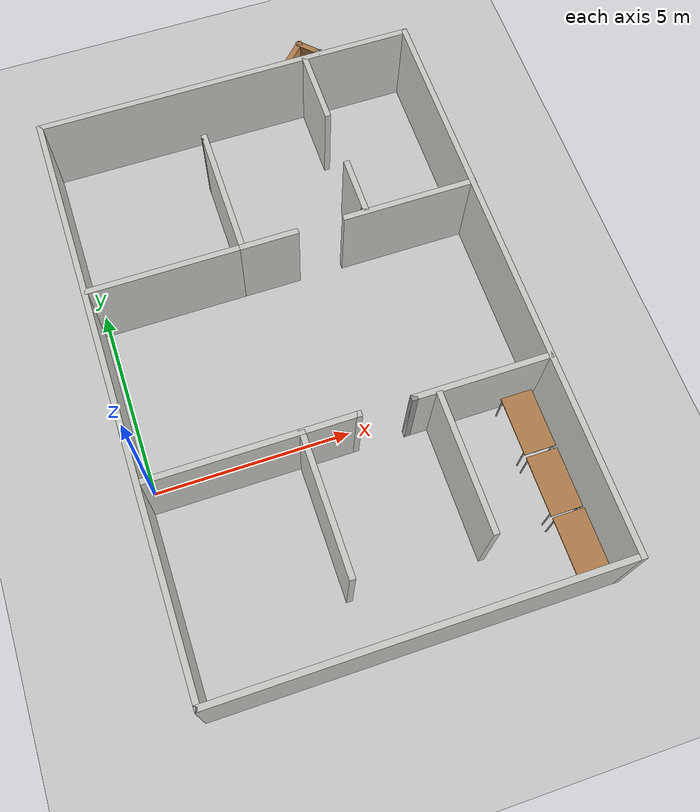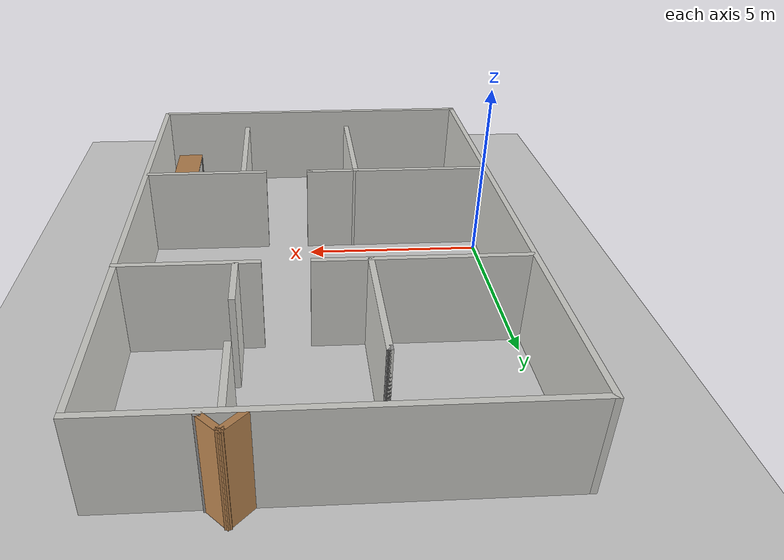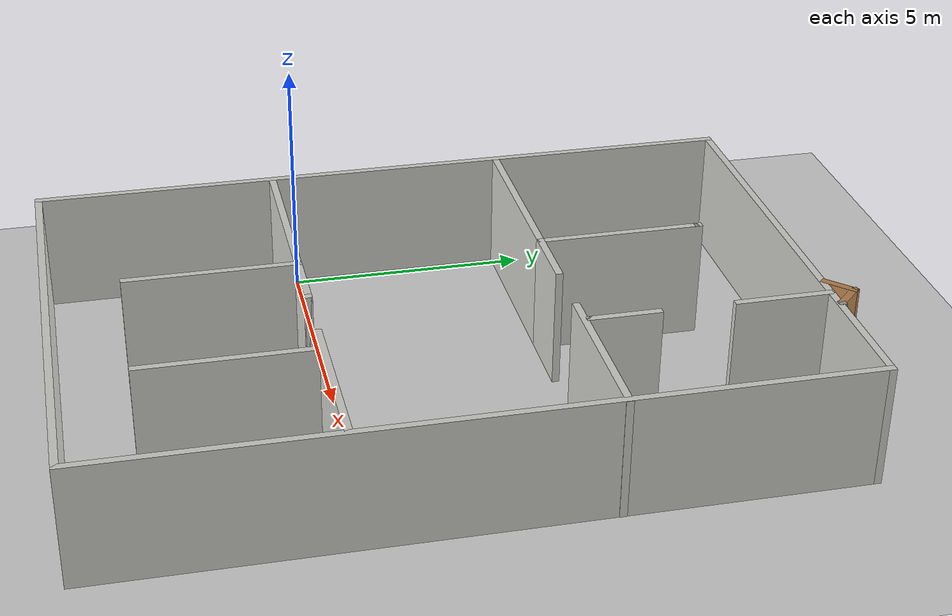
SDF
<sdf version="1.7">
 <world name="default">
  <model name="ground_plane">
   <static>1</static>
   <link name="link">
    <collision name="collision">
     <geometry><plane><normal>0 0 1</normal><size>100 100</size></plane></geometry>
     <surface><friction><ode><mu>100</mu><mu2>50</mu2></ode></friction></surface>
    </collision>
    <visual name="visual">
     <cast_shadows>0</cast_shadows>
     <geometry><plane><normal>0 0 1</normal><size>100 100</size></plane></geometry>
     <material>
      <script><uri>file://media/materials/scripts/gazebo.material</uri><name>Gazebo/Grey</name></script>
     </material>
    </visual>
   </link>
  </model>
  <model name="School">
   <link name="Wall_17">
    <pose>0.254991 -4.96898 0 0 -0 0</pose>
    <visual name="Wall_17_Visual">
     <pose>0 0 1.25 0 -0 0</pose>
     <geometry><box><size>15 0.15 2.5</size></box></geometry>
     <material>
      <script><uri>file://media/materials/scripts/gazebo.material</uri><name>Gazebo/CeilingTiled</name></script>
      <ambient>1 1 1 1</ambient>
      <shader type="pixel"/>
     </material>
     <meta><layer>0</layer></meta>
    </visual>
    <collision name="Wall_17_Collision">
     <pose>0 0 1.25 0 -0 0</pose>
     <geometry><box><size>15 0.15 2.5</size></box></geometry>
     <surface>
      <friction>
       <ode><mu>1</mu><mu2>1</mu2><fdir1>0 0 0</fdir1><slip1>0</slip1><slip2>0</slip2></ode>
       <torsional>
        <coefficient>1</coefficient>
        <patch_radius>0</patch_radius>
        <surface_radius>0</surface_radius>
        <use_patch_radius>1</use_patch_radius>
        <ode><slip>0</slip></ode>
       </torsional>
      </friction>
      <bounce><restitution_coefficient>0</restitution_coefficient><threshold>1e+06</threshold></bounce>
      <contact>
       <collide_without_contact>0</collide_without_contact>
       <collide_without_contact_bitmask>1</collide_without_contact_bitmask>
       <collide_bitmask>1</collide_bitmask>
       <ode>
        <soft_cfm>0</soft_cfm>
        <soft_erp>0.2</soft_erp>
        <kp>1e+13</kp>
        <kd>1</kd>
        <max_vel>0.01</max_vel>
        <min_depth>0</min_depth>
       </ode>
       <bullet>
        <split_impulse>1</split_impulse>
        <split_impulse_penetration_threshold>-0.01</split_impulse_penetration_threshold>
        <soft_cfm>0</soft_cfm>
        <soft_erp>0.2</soft_erp>
        <kp>1e+13</kp>
        <kd>1</kd>
       </bullet>
      </contact>
     </surface>
    </collision>
   </link>
   <link name="Wall_19">
    <pose>7.67999 -0.04398 0 0 -0 1.5708</pose>
    <visual name="Wall_19_Visual">
     <pose>0 0 1.25 0 -0 0</pose>
     <geometry><box><size>10 0.15 2.5</size></box></geometry>
     <material>
      <script><uri>file://media/materials/scripts/gazebo.material</uri><name>Gazebo/CeilingTiled</name></script>
      <ambient>1 1 1 1</ambient>
      <shader type="pixel"/>
     </material>
     <meta><layer>0</layer></meta>
    </visual>
    <collision name="Wall_19_Collision">
     <pose>0 0 1.25 0 -0 0</pose>
     <geometry><box><size>10 0.15 2.5</size></box></geometry>
     <surface>
      <friction>
       <ode><mu>1</mu><mu2>1</mu2><fdir1>0 0 0</fdir1><slip1>0</slip1><slip2>0</slip2></ode>
       <torsional>
        <coefficient>1</coefficient>
        <patch_radius>0</patch_radius>
        <surface_radius>0</surface_radius>
        <use_patch_radius>1</use_patch_radius>
        <ode><slip>0</slip></ode>
       </torsional>
      </friction>
      <bounce><restitution_coefficient>0</restitution_coefficient><threshold>1e+06</threshold></bounce>
      <contact>
       <collide_without_contact>0</collide_without_contact>
       <collide_without_contact_bitmask>1</collide_without_contact_bitmask>
       <collide_bitmask>1</collide_bitmask>
       <ode>
        <soft_cfm>0</soft_cfm>
        <soft_erp>0.2</soft_erp>
        <kp>1e+13</kp>
        <kd>1</kd>
        <max_vel>0.01</max_vel>
        <min_depth>0</min_depth>
       </ode>
       <bullet>
        <split_impulse>1</split_impulse>
        <split_impulse_penetration_threshold>-0.01</split_impulse_penetration_threshold>
        <soft_cfm>0</soft_cfm>
        <soft_erp>0.2</soft_erp>
        <kp>1e+13</kp>
        <kd>1</kd>
       </bullet>
      </contact>
     </surface>
    </collision>
   </link>
   <link name="Wall_21">
    <pose>2.71343 -2.97254 0 0 -0 1.56975</pose>
    <visual name="Wall_21_Visual">
     <pose>0 0 1.25 0 -0 0</pose>
     <geometry><box><size>3.84171 0.15 2.5</size></box></geometry>
     <material>
      <script><uri>file://media/materials/scripts/gazebo.material</uri><name>Gazebo/CeilingTiled</name></script>
      <ambient>1 1 1 1</ambient>
      <shader type="pixel"/>
     </material>
     <meta><layer>0</layer></meta>
    </visual>
    <collision name="Wall_21_Collision">
     <pose>0 0 1.25 0 -0 0</pose>
     <geometry><box><size>3.84171 0.15 2.5</size></box></geometry>
     <surface>
      <friction>
       <ode><mu>1</mu><mu2>1</mu2><fdir1>0 0 0</fdir1><slip1>0</slip1><slip2>0</slip2></ode>
       <torsional>
        <coefficient>1</coefficient>
        <patch_radius>0</patch_radius>
        <surface_radius>0</surface_radius>
        <use_patch_radius>1</use_patch_radius>
        <ode><slip>0</slip></ode>
       </torsional>
      </friction>
      <bounce><restitution_coefficient>0</restitution_coefficient><threshold>1e+06</threshold></bounce>
      <contact>
       <collide_without_contact>0</collide_without_contact>
       <collide_without_contact_bitmask>1</collide_without_contact_bitmask>
       <collide_bitmask>1</collide_bitmask>
       <ode>
        <soft_cfm>0</soft_cfm>
        <soft_erp>0.2</soft_erp>
        <kp>1e+13</kp>
        <kd>1</kd>
        <max_vel>0.01</max_vel>
        <min_depth>0</min_depth>
       </ode>
       <bullet>
        <split_impulse>1</split_impulse>
        <split_impulse_penetration_threshold>-0.01</split_impulse_penetration_threshold>
        <soft_cfm>0</soft_cfm>
        <soft_erp>0.2</soft_erp>
        <kp>1e+13</kp>
        <kd>1</kd>
       </bullet>
      </contact>
     </surface>
    </collision>
   </link>
   <link name="Wall_25">
    <pose>-7.17001 -0.00448 0 0 -0 1.5708</pose>
    <visual name="Wall_25_Visual">
     <pose>0 0 1.25 0 -0 0</pose>
     <geometry><box><size>10.0791 0.15 2.5</size></box></geometry>
     <material>
      <script><uri>file://media/materials/scripts/gazebo.material</uri><name>Gazebo/CeilingTiled</name></script>
      <ambient>1 1 1 1</ambient>
      <shader type="pixel"/>
     </material>
     <meta><layer>0</layer></meta>
    </visual>
    <collision name="Wall_25_Collision">
     <pose>0 0 1.25 0 -0 0</pose>
     <geometry><box><size>10.0791 0.15 2.5</size></box></geometry>
     <surface>
      <friction>
       <ode><mu>1</mu><mu2>1</mu2><fdir1>0 0 0</fdir1><slip1>0</slip1><slip2>0</slip2></ode>
       <torsional>
        <coefficient>1</coefficient>
        <patch_radius>0</patch_radius>
        <surface_radius>0</surface_radius>
        <use_patch_radius>1</use_patch_radius>
        <ode><slip>0</slip></ode>
       </torsional>
      </friction>
      <bounce><restitution_coefficient>0</restitution_coefficient><threshold>1e+06</threshold></bounce>
      <contact>
       <collide_without_contact>0</collide_without_contact>
       <collide_without_contact_bitmask>1</collide_without_contact_bitmask>
       <collide_bitmask>1</collide_bitmask>
       <ode>
        <soft_cfm>0</soft_cfm>
        <soft_erp>0.2</soft_erp>
        <kp>1e+13</kp>
        <kd>1</kd>
        <max_vel>0.01</max_vel>
        <min_depth>0</min_depth>
       </ode>
       <bullet>
        <split_impulse>1</split_impulse>
        <split_impulse_penetration_threshold>-0.01</split_impulse_penetration_threshold>
        <soft_cfm>0</soft_cfm>
        <soft_erp>0.2</soft_erp>
        <kp>1e+13</kp>
        <kd>1</kd>
       </bullet>
      </contact>
     </surface>
    </collision>
   </link>
   <link name="Wall_27">
    <pose>-2.23801 -2.96498 0 0 -0 1.5708</pose>
    <visual name="Wall_27_Visual">
     <pose>0 0 1.25 0 -0 0</pose>
     <geometry><box><size>4 0.15 2.5</size></box></geometry>
     <material>
      <script><uri>file://media/materials/scripts/gazebo.material</uri><name>Gazebo/CeilingTiled</name></script>
      <ambient>1 1 1 1</ambient>
      <shader type="pixel"/>
     </material>
     <meta><layer>0</layer></meta>
    </visual>
    <collision name="Wall_27_Collision">
     <pose>0 0 1.25 0 -0 0</pose>
     <geometry><box><size>4 0.15 2.5</size></box></geometry>
     <surface>
      <friction>
       <ode><mu>1</mu><mu2>1</mu2><fdir1>0 0 0</fdir1><slip1>0</slip1><slip2>0</slip2></ode>
       <torsional>
        <coefficient>1</coefficient>
        <patch_radius>0</patch_radius>
        <surface_radius>0</surface_radius>
        <use_patch_radius>1</use_patch_radius>
        <ode><slip>0</slip></ode>
       </torsional>
      </friction>
      <bounce><restitution_coefficient>0</restitution_coefficient><threshold>1e+06</threshold></bounce>
      <contact>
       <collide_without_contact>0</collide_without_contact>
       <collide_without_contact_bitmask>1</collide_without_contact_bitmask>
       <collide_bitmask>1</collide_bitmask>
       <ode>
        <soft_cfm>0</soft_cfm>
        <soft_erp>0.2</soft_erp>
        <kp>1e+13</kp>
        <kd>1</kd>
        <max_vel>0.01</max_vel>
        <min_depth>0</min_depth>
       </ode>
       <bullet>
        <split_impulse>1</split_impulse>
        <split_impulse_penetration_threshold>-0.01</split_impulse_penetration_threshold>
        <soft_cfm>0</soft_cfm>
        <soft_erp>0.2</soft_erp>
        <kp>1e+13</kp>
        <kd>1</kd>
       </bullet>
      </contact>
     </surface>
    </collision>
   </link>
   <link name="Wall_29">
    <pose>-3.91301 -1.03998 0 0 -0 3.14159</pose>
    <visual name="Wall_29_Visual">
     <pose>0 0 1.25 0 -0 0</pose>
     <geometry><box><size>3.5 0.15 2.5</size></box></geometry>
     <material>
      <script><uri>file://media/materials/scripts/gazebo.material</uri><name>Gazebo/CeilingTiled</name></script>
      <ambient>1 1 1 1</ambient>
      <shader type="pixel"/>
     </material>
     <meta><layer>0</layer></meta>
    </visual>
    <collision name="Wall_29_Collision">
     <pose>0 0 1.25 0 -0 0</pose>
     <geometry><box><size>3.5 0.15 2.5</size></box></geometry>
     <surface>
      <friction>
       <ode><mu>1</mu><mu2>1</mu2><fdir1>0 0 0</fdir1><slip1>0</slip1><slip2>0</slip2></ode>
       <torsional>
        <coefficient>1</coefficient>
        <patch_radius>0</patch_radius>
        <surface_radius>0</surface_radius>
        <use_patch_radius>1</use_patch_radius>
        <ode><slip>0</slip></ode>
       </torsional>
      </friction>
      <bounce><restitution_coefficient>0</restitution_coefficient><threshold>1e+06</threshold></bounce>
      <contact>
       <collide_without_contact>0</collide_without_contact>
       <collide_without_contact_bitmask>1</collide_without_contact_bitmask>
       <collide_bitmask>1</collide_bitmask>
       <ode>
        <soft_cfm>0</soft_cfm>
        <soft_erp>0.2</soft_erp>
        <kp>1e+13</kp>
        <kd>1</kd>
        <max_vel>0.01</max_vel>
        <min_depth>0</min_depth>
       </ode>
       <bullet>
        <split_impulse>1</split_impulse>
        <split_impulse_penetration_threshold>-0.01</split_impulse_penetration_threshold>
        <soft_cfm>0</soft_cfm>
        <soft_erp>0.2</soft_erp>
        <kp>1e+13</kp>
        <kd>1</kd>
       </bullet>
      </contact>
     </surface>
    </collision>
   </link>
   <link name="Wall_30">
    <pose>-5.58301 -1.03998 0 0 -0 0</pose>
    <visual name="Wall_30_Visual">
     <pose>0 0 1.25 0 -0 0</pose>
     <geometry><box><size>0.16 0.15 2.5</size></box></geometry>
     <material>
      <script><uri>file://media/materials/scripts/gazebo.material</uri><name>Gazebo/Grey</name></script>
      <ambient>1 1 1 1</ambient>
      <shader type="pixel"/>
     </material>
     <meta><layer>0</layer></meta>
    </visual>
    <collision name="Wall_30_Collision">
     <pose>0 0 1.25 0 -0 0</pose>
     <geometry><box><size>0.16 0.15 2.5</size></box></geometry>
     <surface>
      <friction>
       <ode><mu>1</mu><mu2>1</mu2><fdir1>0 0 0</fdir1><slip1>0</slip1><slip2>0</slip2></ode>
       <torsional>
        <coefficient>1</coefficient>
        <patch_radius>0</patch_radius>
        <surface_radius>0</surface_radius>
        <use_patch_radius>1</use_patch_radius>
        <ode><slip>0</slip></ode>
       </torsional>
      </friction>
      <bounce><restitution_coefficient>0</restitution_coefficient><threshold>1e+06</threshold></bounce>
      <contact>
       <collide_without_contact>0</collide_without_contact>
       <collide_without_contact_bitmask>1</collide_without_contact_bitmask>
       <collide_bitmask>1</collide_bitmask>
       <ode>
        <soft_cfm>0</soft_cfm>
        <soft_erp>0.2</soft_erp>
        <kp>1e+13</kp>
        <kd>1</kd>
        <max_vel>0.01</max_vel>
        <min_depth>0</min_depth>
       </ode>
       <bullet>
        <split_impulse>1</split_impulse>
        <split_impulse_penetration_threshold>-0.01</split_impulse_penetration_threshold>
        <soft_cfm>0</soft_cfm>
        <soft_erp>0.2</soft_erp>
        <kp>1e+13</kp>
        <kd>1</kd>
       </bullet>
      </contact>
     </surface>
    </collision>
   </link>
   <link name="Wall_32">
    <pose>4.42767 -1.12668 0 0 -0 0</pose>
    <visual name="Wall_32_Visual">
     <pose>0 0 1.25 0 -0 0</pose>
     <geometry><box><size>3.57462 0.15 2.5</size></box></geometry>
     <material>
      <script><uri>file://media/materials/scripts/gazebo.material</uri><name>Gazebo/CeilingTiled</name></script>
      <ambient>1 1 1 1</ambient>
      <shader type="pixel"/>
     </material>
     <meta><layer>0</layer></meta>
    </visual>
    <collision name="Wall_32_Collision">
     <pose>0 0 1.25 0 -0 0</pose>
     <geometry><box><size>3.57462 0.15 2.5</size></box></geometry>
     <surface>
      <friction>
       <ode><mu>1</mu><mu2>1</mu2><fdir1>0 0 0</fdir1><slip1>0</slip1><slip2>0</slip2></ode>
       <torsional>
        <coefficient>1</coefficient>
        <patch_radius>0</patch_radius>
        <surface_radius>0</surface_radius>
        <use_patch_radius>1</use_patch_radius>
        <ode><slip>0</slip></ode>
       </torsional>
      </friction>
      <bounce><restitution_coefficient>0</restitution_coefficient><threshold>1e+06</threshold></bounce>
      <contact>
       <collide_without_contact>0</collide_without_contact>
       <collide_without_contact_bitmask>1</collide_without_contact_bitmask>
       <collide_bitmask>1</collide_bitmask>
       <ode>
        <soft_cfm>0</soft_cfm>
        <soft_erp>0.2</soft_erp>
        <kp>1e+13</kp>
        <kd>1</kd>
        <max_vel>0.01</max_vel>
        <min_depth>0</min_depth>
       </ode>
       <bullet>
        <split_impulse>1</split_impulse>
        <split_impulse_penetration_threshold>-0.01</split_impulse_penetration_threshold>
        <soft_cfm>0</soft_cfm>
        <soft_erp>0.2</soft_erp>
        <kp>1e+13</kp>
        <kd>1</kd>
       </bullet>
      </contact>
     </surface>
    </collision>
   </link>
   <link name="Wall_36">
    <pose>0.254991 4.95997 0 0 0 -7e-06</pose>
    <visual name="Wall_36_Visual">
     <pose>0 0 1.25 0 -0 0</pose>
     <geometry><box><size>15 0.15 2.5</size></box></geometry>
     <material>
      <script><uri>file://media/materials/scripts/gazebo.material</uri><name>Gazebo/CeilingTiled</name></script>
      <ambient>1 1 1 1</ambient>
      <shader type="pixel"/>
     </material>
     <meta><layer>0</layer></meta>
    </visual>
    <collision name="Wall_36_Collision">
     <pose>0 0 1.25 0 -0 0</pose>
     <geometry><box><size>15 0.15 2.5</size></box></geometry>
     <surface>
      <friction>
       <ode><mu>1</mu><mu2>1</mu2><fdir1>0 0 0</fdir1><slip1>0</slip1><slip2>0</slip2></ode>
       <torsional>
        <coefficient>1</coefficient>
        <patch_radius>0</patch_radius>
        <surface_radius>0</surface_radius>
        <use_patch_radius>1</use_patch_radius>
        <ode><slip>0</slip></ode>
       </torsional>
      </friction>
      <bounce><restitution_coefficient>0</restitution_coefficient><threshold>1e+06</threshold></bounce>
      <contact>
       <collide_without_contact>0</collide_without_contact>
       <collide_without_contact_bitmask>1</collide_without_contact_bitmask>
       <collide_bitmask>1</collide_bitmask>
       <ode>
        <soft_cfm>0</soft_cfm>
        <soft_erp>0.2</soft_erp>
        <kp>1e+13</kp>
        <kd>1</kd>
        <max_vel>0.01</max_vel>
        <min_depth>0</min_depth>
       </ode>
       <bullet>
        <split_impulse>1</split_impulse>
        <split_impulse_penetration_threshold>-0.01</split_impulse_penetration_threshold>
        <soft_cfm>0</soft_cfm>
        <soft_erp>0.2</soft_erp>
        <kp>1e+13</kp>
        <kd>1</kd>
       </bullet>
      </contact>
     </surface>
    </collision>
   </link>
   <link name="Wall_39">
    <pose>-2.23801 -0.36498 0 0 -0 1.5708</pose>
    <visual name="Wall_39_Visual">
     <pose>0 0 1.25 0 -0 0</pose>
     <geometry><box><size>1.5 0.15 2.5</size></box></geometry>
     <material>
      <script><uri>file://media/materials/scripts/gazebo.material</uri><name>Gazebo/CeilingTiled</name></script>
      <ambient>1 1 1 1</ambient>
      <shader type="pixel"/>
     </material>
     <meta><layer>0</layer></meta>
    </visual>
    <collision name="Wall_39_Collision">
     <pose>0 0 1.25 0 -0 0</pose>
     <geometry><box><size>1.5 0.15 2.5</size></box></geometry>
     <surface>
      <friction>
       <ode><mu>1</mu><mu2>1</mu2><fdir1>0 0 0</fdir1><slip1>0</slip1><slip2>0</slip2></ode>
       <torsional>
        <coefficient>1</coefficient>
        <patch_radius>0</patch_radius>
        <surface_radius>0</surface_radius>
        <use_patch_radius>1</use_patch_radius>
        <ode><slip>0</slip></ode>
       </torsional>
      </friction>
      <bounce><restitution_coefficient>0</restitution_coefficient><threshold>1e+06</threshold></bounce>
      <contact>
       <collide_without_contact>0</collide_without_contact>
       <collide_without_contact_bitmask>1</collide_without_contact_bitmask>
       <collide_bitmask>1</collide_bitmask>
       <ode>
        <soft_cfm>0</soft_cfm>
        <soft_erp>0.2</soft_erp>
        <kp>1e+13</kp>
        <kd>1</kd>
        <max_vel>0.01</max_vel>
        <min_depth>0</min_depth>
       </ode>
       <bullet>
        <split_impulse>1</split_impulse>
        <split_impulse_penetration_threshold>-0.01</split_impulse_penetration_threshold>
        <soft_cfm>0</soft_cfm>
        <soft_erp>0.2</soft_erp>
        <kp>1e+13</kp>
        <kd>1</kd>
       </bullet>
      </contact>
     </surface>
    </collision>
   </link>
   <link name="Wall_41">
    <pose>-2.23801 3.29402 0 0 0 -1.5708</pose>
    <visual name="Wall_41_Visual">
     <pose>0 0 1.25 0 -0 0</pose>
     <geometry><box><size>3.5 0.15 2.5</size></box></geometry>
     <material>
      <script><uri>file://media/materials/scripts/gazebo.material</uri><name>Gazebo/CeilingTiled</name></script>
      <ambient>1 1 1 1</ambient>
      <shader type="pixel"/>
     </material>
     <meta><layer>0</layer></meta>
    </visual>
    <collision name="Wall_41_Collision">
     <pose>0 0 1.25 0 -0 0</pose>
     <geometry><box><size>3.5 0.15 2.5</size></box></geometry>
     <surface>
      <friction>
       <ode><mu>1</mu><mu2>1</mu2><fdir1>0 0 0</fdir1><slip1>0</slip1><slip2>0</slip2></ode>
       <torsional>
        <coefficient>1</coefficient>
        <patch_radius>0</patch_radius>
        <surface_radius>0</surface_radius>
        <use_patch_radius>1</use_patch_radius>
        <ode><slip>0</slip></ode>
       </torsional>
      </friction>
      <bounce><restitution_coefficient>0</restitution_coefficient><threshold>1e+06</threshold></bounce>
      <contact>
       <collide_without_contact>0</collide_without_contact>
       <collide_without_contact_bitmask>1</collide_without_contact_bitmask>
       <collide_bitmask>1</collide_bitmask>
       <ode>
        <soft_cfm>0</soft_cfm>
        <soft_erp>0.2</soft_erp>
        <kp>1e+13</kp>
        <kd>1</kd>
        <max_vel>0.01</max_vel>
        <min_depth>0</min_depth>
       </ode>
       <bullet>
        <split_impulse>1</split_impulse>
        <split_impulse_penetration_threshold>-0.01</split_impulse_penetration_threshold>
        <soft_cfm>0</soft_cfm>
        <soft_erp>0.2</soft_erp>
        <kp>1e+13</kp>
        <kd>1</kd>
       </bullet>
      </contact>
     </surface>
    </collision>
   </link>
   <link name="Wall_46">
    <pose>2.73299 3.23402 0 0 0 -1.5708</pose>
    <visual name="Wall_46_Visual">
     <pose>0 0 1.25 0 -0 0</pose>
     <geometry><box><size>3.5 0.15 2.5</size></box></geometry>
     <material>
      <script><uri>file://media/materials/scripts/gazebo.material</uri><name>Gazebo/CeilingTiled</name></script>
      <ambient>1 1 1 1</ambient>
      <shader type="pixel"/>
     </material>
     <meta><layer>0</layer></meta>
    </visual>
    <collision name="Wall_46_Collision">
     <pose>0 0 1.25 0 -0 0</pose>
     <geometry><box><size>3.5 0.15 2.5</size></box></geometry>
     <surface>
      <friction>
       <ode><mu>1</mu><mu2>1</mu2><fdir1>0 0 0</fdir1><slip1>0</slip1><slip2>0</slip2></ode>
       <torsional>
        <coefficient>1</coefficient>
        <patch_radius>0</patch_radius>
        <surface_radius>0</surface_radius>
        <use_patch_radius>1</use_patch_radius>
        <ode><slip>0</slip></ode>
       </torsional>
      </friction>
      <bounce><restitution_coefficient>0</restitution_coefficient><threshold>1e+06</threshold></bounce>
      <contact>
       <collide_without_contact>0</collide_without_contact>
       <collide_without_contact_bitmask>1</collide_without_contact_bitmask>
       <collide_bitmask>1</collide_bitmask>
       <ode>
        <soft_cfm>0</soft_cfm>
        <soft_erp>0.2</soft_erp>
        <kp>1e+13</kp>
        <kd>1</kd>
        <max_vel>0.01</max_vel>
        <min_depth>0</min_depth>
       </ode>
       <bullet>
        <split_impulse>1</split_impulse>
        <split_impulse_penetration_threshold>-0.01</split_impulse_penetration_threshold>
        <soft_cfm>0</soft_cfm>
        <soft_erp>0.2</soft_erp>
        <kp>1e+13</kp>
        <kd>1</kd>
       </bullet>
      </contact>
     </surface>
    </collision>
   </link>
   <link name="Wall_47">
    <pose>2.73299 1.55902 0 0 -0 0</pose>
    <visual name="Wall_47_Visual">
     <pose>0 0 1.25 0 -0 0</pose>
     <geometry><box><size>0.15 0.15 2.5</size></box></geometry>
     <material>
      <script><uri>file://media/materials/scripts/gazebo.material</uri><name>Gazebo/Grey</name></script>
      <ambient>1 1 1 1</ambient>
      <shader type="pixel"/>
     </material>
     <meta><layer>0</layer></meta>
    </visual>
    <collision name="Wall_47_Collision">
     <pose>0 0 1.25 0 -0 0</pose>
     <geometry><box><size>0.15 0.15 2.5</size></box></geometry>
     <surface>
      <friction>
       <ode><mu>1</mu><mu2>1</mu2><fdir1>0 0 0</fdir1><slip1>0</slip1><slip2>0</slip2></ode>
       <torsional>
        <coefficient>1</coefficient>
        <patch_radius>0</patch_radius>
        <surface_radius>0</surface_radius>
        <use_patch_radius>1</use_patch_radius>
        <ode><slip>0</slip></ode>
       </torsional>
      </friction>
      <bounce><restitution_coefficient>0</restitution_coefficient><threshold>1e+06</threshold></bounce>
      <contact>
       <collide_without_contact>0</collide_without_contact>
       <collide_without_contact_bitmask>1</collide_without_contact_bitmask>
       <collide_bitmask>1</collide_bitmask>
       <ode>
        <soft_cfm>0</soft_cfm>
        <soft_erp>0.2</soft_erp>
        <kp>1e+13</kp>
        <kd>1</kd>
        <max_vel>0.01</max_vel>
        <min_depth>0</min_depth>
       </ode>
       <bullet>
        <split_impulse>1</split_impulse>
        <split_impulse_penetration_threshold>-0.01</split_impulse_penetration_threshold>
        <soft_cfm>0</soft_cfm>
        <soft_erp>0.2</soft_erp>
        <kp>1e+13</kp>
        <kd>1</kd>
       </bullet>
      </contact>
     </surface>
    </collision>
   </link>
   <link name="Wall_49">
    <pose>2.71536 -0.45168 0 0 -0 1.5708</pose>
    <visual name="Wall_49_Visual">
     <pose>0 0 1.25 0 -0 0</pose>
     <geometry><box><size>1.5 0.15 2.5</size></box></geometry>
     <material>
      <script><uri>file://media/materials/scripts/gazebo.material</uri><name>Gazebo/CeilingTiled</name></script>
      <ambient>1 1 1 1</ambient>
      <shader type="pixel"/>
     </material>
     <meta><layer>0</layer></meta>
    </visual>
    <collision name="Wall_49_Collision">
     <pose>0 0 1.25 0 -0 0</pose>
     <geometry><box><size>1.5 0.15 2.5</size></box></geometry>
     <surface>
      <friction>
       <ode><mu>1</mu><mu2>1</mu2><fdir1>0 0 0</fdir1><slip1>0</slip1><slip2>0</slip2></ode>
       <torsional>
        <coefficient>1</coefficient>
        <patch_radius>0</patch_radius>
        <surface_radius>0</surface_radius>
        <use_patch_radius>1</use_patch_radius>
        <ode><slip>0</slip></ode>
       </torsional>
      </friction>
      <bounce><restitution_coefficient>0</restitution_coefficient><threshold>1e+06</threshold></bounce>
      <contact>
       <collide_without_contact>0</collide_without_contact>
       <collide_without_contact_bitmask>1</collide_without_contact_bitmask>
       <collide_bitmask>1</collide_bitmask>
       <ode>
        <soft_cfm>0</soft_cfm>
        <soft_erp>0.2</soft_erp>
        <kp>1e+13</kp>
        <kd>1</kd>
        <max_vel>0.01</max_vel>
        <min_depth>0</min_depth>
       </ode>
       <bullet>
        <split_impulse>1</split_impulse>
        <split_impulse_penetration_threshold>-0.01</split_impulse_penetration_threshold>
        <soft_cfm>0</soft_cfm>
        <soft_erp>0.2</soft_erp>
        <kp>1e+13</kp>
        <kd>1</kd>
       </bullet>
      </contact>
     </surface>
    </collision>
   </link>
   <link name="Wall_50">
    <pose>2.71536 0.22332 0 0 -0 0</pose>
    <visual name="Wall_50_Visual">
     <pose>0 0 1.25 0 -0 0</pose>
     <geometry><box><size>0.15 0.15 2.5</size></box></geometry>
     <material>
      <script><uri>file://media/materials/scripts/gazebo.material</uri><name>Gazebo/CeilingTiled</name></script>
      <ambient>1 1 1 1</ambient>
      <shader type="pixel"/>
     </material>
     <meta><layer>0</layer></meta>
    </visual>
    <collision name="Wall_50_Collision">
     <pose>0 0 1.25 0 -0 0</pose>
     <geometry><box><size>0.15 0.15 2.5</size></box></geometry>
     <surface>
      <friction>
       <ode><mu>1</mu><mu2>1</mu2><fdir1>0 0 0</fdir1><slip1>0</slip1><slip2>0</slip2></ode>
       <torsional>
        <coefficient>1</coefficient>
        <patch_radius>0</patch_radius>
        <surface_radius>0</surface_radius>
        <use_patch_radius>1</use_patch_radius>
        <ode><slip>0</slip></ode>
       </torsional>
      </friction>
      <bounce><restitution_coefficient>0</restitution_coefficient><threshold>1e+06</threshold></bounce>
      <contact>
       <collide_without_contact>0</collide_without_contact>
       <collide_without_contact_bitmask>1</collide_without_contact_bitmask>
       <collide_bitmask>1</collide_bitmask>
       <ode>
        <soft_cfm>0</soft_cfm>
        <soft_erp>0.2</soft_erp>
        <kp>1e+13</kp>
        <kd>1</kd>
        <max_vel>0.01</max_vel>
        <min_depth>0</min_depth>
       </ode>
       <bullet>
        <split_impulse>1</split_impulse>
        <split_impulse_penetration_threshold>-0.01</split_impulse_penetration_threshold>
        <soft_cfm>0</soft_cfm>
        <soft_erp>0.2</soft_erp>
        <kp>1e+13</kp>
        <kd>1</kd>
       </bullet>
      </contact>
     </surface>
    </collision>
   </link>
   <link name="Wall_53">
    <pose>-7.64893 2.15204 0 0 -0 0</pose>
    <visual name="Wall_53_Visual">
     <pose>0 0 1.25 0 -0 0</pose>
     <geometry><box><size>0.15 0.15 2.5</size></box></geometry>
     <material>
      <script><uri>file://media/materials/scripts/gazebo.material</uri><name>Gazebo/Wood</name></script>
      <ambient>1 1 1 1</ambient>
      <shader type="pixel"/>
     </material>
     <meta><layer>0</layer></meta>
    </visual>
    <collision name="Wall_53_Collision">
     <pose>0 0 1.25 0 -0 0</pose>
     <geometry><box><size>0.15 0.15 2.5</size></box></geometry>
     <surface>
      <friction>
       <ode><mu>1</mu><mu2>1</mu2><fdir1>0 0 0</fdir1><slip1>0</slip1><slip2>0</slip2></ode>
       <torsional>
        <coefficient>1</coefficient>
        <patch_radius>0</patch_radius>
        <surface_radius>0</surface_radius>
        <use_patch_radius>1</use_patch_radius>
        <ode><slip>0</slip></ode>
       </torsional>
      </friction>
      <bounce><restitution_coefficient>0</restitution_coefficient><threshold>1e+06</threshold></bounce>
      <contact>
       <collide_without_contact>0</collide_without_contact>
       <collide_without_contact_bitmask>1</collide_without_contact_bitmask>
       <collide_bitmask>1</collide_bitmask>
       <ode>
        <soft_cfm>0</soft_cfm>
        <soft_erp>0.2</soft_erp>
        <kp>1e+13</kp>
        <kd>1</kd>
        <max_vel>0.01</max_vel>
        <min_depth>0</min_depth>
       </ode>
       <bullet>
        <split_impulse>1</split_impulse>
        <split_impulse_penetration_threshold>-0.01</split_impulse_penetration_threshold>
        <soft_cfm>0</soft_cfm>
        <soft_erp>0.2</soft_erp>
        <kp>1e+13</kp>
        <kd>1</kd>
       </bullet>
      </contact>
     </surface>
    </collision>
   </link>
   <link name="Wall_55">
    <pose>-6.21671 2.15116 0 0 -0 0</pose>
    <visual name="Wall_55_Visual">
     <pose>0 0 1.25 0 -0 0</pose>
     <geometry><box><size>2 0.15 2.5</size></box></geometry>
     <material>
      <script><uri>file://media/materials/scripts/gazebo.material</uri><name>Gazebo/CeilingTiled</name></script>
      <ambient>1 1 1 1</ambient>
      <shader type="pixel"/>
     </material>
     <meta><layer>0</layer></meta>
    </visual>
    <collision name="Wall_55_Collision">
     <pose>0 0 1.25 0 -0 0</pose>
     <geometry><box><size>2 0.15 2.5</size></box></geometry>
     <surface>
      <friction>
       <ode><mu>1</mu><mu2>1</mu2><fdir1>0 0 0</fdir1><slip1>0</slip1><slip2>0</slip2></ode>
       <torsional>
        <coefficient>1</coefficient>
        <patch_radius>0</patch_radius>
        <surface_radius>0</surface_radius>
        <use_patch_radius>1</use_patch_radius>
        <ode><slip>0</slip></ode>
       </torsional>
      </friction>
      <bounce><restitution_coefficient>0</restitution_coefficient><threshold>1e+06</threshold></bounce>
      <contact>
       <collide_without_contact>0</collide_without_contact>
       <collide_without_contact_bitmask>1</collide_without_contact_bitmask>
       <collide_bitmask>1</collide_bitmask>
       <ode>
        <soft_cfm>0</soft_cfm>
        <soft_erp>0.2</soft_erp>
        <kp>1e+13</kp>
        <kd>1</kd>
        <max_vel>0.01</max_vel>
        <min_depth>0</min_depth>
       </ode>
       <bullet>
        <split_impulse>1</split_impulse>
        <split_impulse_penetration_threshold>-0.01</split_impulse_penetration_threshold>
        <soft_cfm>0</soft_cfm>
        <soft_erp>0.2</soft_erp>
        <kp>1e+13</kp>
        <kd>1</kd>
       </bullet>
      </contact>
     </surface>
    </collision>
   </link>
   <link name="Wall_57">
    <pose>-3.02201 2.15102 0 0 -0 0</pose>
    <visual name="Wall_57_Visual">
     <pose>0 0 1.25 0 -0 0</pose>
     <geometry><box><size>1.5 0.15 2.5</size></box></geometry>
     <material>
      <script><uri>file://media/materials/scripts/gazebo.material</uri><name>Gazebo/CeilingTiled</name></script>
      <ambient>1 1 1 1</ambient>
      <shader type="pixel"/>
     </material>
     <meta><layer>0</layer></meta>
    </visual>
    <collision name="Wall_57_Collision">
     <pose>0 0 1.25 0 -0 0</pose>
     <geometry><box><size>1.5 0.15 2.5</size></box></geometry>
     <surface>
      <friction>
       <ode><mu>1</mu><mu2>1</mu2><fdir1>0 0 0</fdir1><slip1>0</slip1><slip2>0</slip2></ode>
       <torsional>
        <coefficient>1</coefficient>
        <patch_radius>0</patch_radius>
        <surface_radius>0</surface_radius>
        <use_patch_radius>1</use_patch_radius>
        <ode><slip>0</slip></ode>
       </torsional>
      </friction>
      <bounce><restitution_coefficient>0</restitution_coefficient><threshold>1e+06</threshold></bounce>
      <contact>
       <collide_without_contact>0</collide_without_contact>
       <collide_without_contact_bitmask>1</collide_without_contact_bitmask>
       <collide_bitmask>1</collide_bitmask>
       <ode>
        <soft_cfm>0</soft_cfm>
        <soft_erp>0.2</soft_erp>
        <kp>1e+13</kp>
        <kd>1</kd>
        <max_vel>0.01</max_vel>
        <min_depth>0</min_depth>
       </ode>
       <bullet>
        <split_impulse>1</split_impulse>
        <split_impulse_penetration_threshold>-0.01</split_impulse_penetration_threshold>
        <soft_cfm>0</soft_cfm>
        <soft_erp>0.2</soft_erp>
        <kp>1e+13</kp>
        <kd>1</kd>
       </bullet>
      </contact>
     </surface>
    </collision>
   </link>
   <link name="Wall_58">
    <pose>-2.34701 2.15102 0 0 -0 0</pose>
    <visual name="Wall_58_Visual">
     <pose>0 0 1.25 0 -0 0</pose>
     <geometry><box><size>0.15 0.15 2.5</size></box></geometry>
     <material>
      <script><uri>file://media/materials/scripts/gazebo.material</uri><name>Gazebo/Grey</name></script>
      <ambient>1 1 1 1</ambient>
      <shader type="pixel"/>
     </material>
     <meta><layer>0</layer></meta>
    </visual>
    <collision name="Wall_58_Collision">
     <pose>0 0 1.25 0 -0 0</pose>
     <geometry><box><size>0.15 0.15 2.5</size></box></geometry>
     <surface>
      <friction>
       <ode><mu>1</mu><mu2>1</mu2><fdir1>0 0 0</fdir1><slip1>0</slip1><slip2>0</slip2></ode>
       <torsional>
        <coefficient>1</coefficient>
        <patch_radius>0</patch_radius>
        <surface_radius>0</surface_radius>
        <use_patch_radius>1</use_patch_radius>
        <ode><slip>0</slip></ode>
       </torsional>
      </friction>
      <bounce><restitution_coefficient>0</restitution_coefficient><threshold>1e+06</threshold></bounce>
      <contact>
       <collide_without_contact>0</collide_without_contact>
       <collide_without_contact_bitmask>1</collide_without_contact_bitmask>
       <collide_bitmask>1</collide_bitmask>
       <ode>
        <soft_cfm>0</soft_cfm>
        <soft_erp>0.2</soft_erp>
        <kp>1e+13</kp>
        <kd>1</kd>
        <max_vel>0.01</max_vel>
        <min_depth>0</min_depth>
       </ode>
       <bullet>
        <split_impulse>1</split_impulse>
        <split_impulse_penetration_threshold>-0.01</split_impulse_penetration_threshold>
        <soft_cfm>0</soft_cfm>
        <soft_erp>0.2</soft_erp>
        <kp>1e+13</kp>
        <kd>1</kd>
       </bullet>
      </contact>
     </surface>
    </collision>
   </link>
   <link name="Wall_61">
    <pose>4.51973 2.15102 0 0 -0 0</pose>
    <visual name="Wall_61_Visual">
     <pose>0 0 1.25 0 -0 0</pose>
     <geometry><box><size>3.5 0.15 2.5</size></box></geometry>
     <material>
      <script><uri>file://media/materials/scripts/gazebo.material</uri><name>Gazebo/CeilingTiled</name></script>
      <ambient>1 1 1 1</ambient>
      <shader type="pixel"/>
     </material>
     <meta><layer>0</layer></meta>
    </visual>
    <collision name="Wall_61_Collision">
     <pose>0 0 1.25 0 -0 0</pose>
     <geometry><box><size>3.5 0.15 2.5</size></box></geometry>
     <surface>
      <friction>
       <ode><mu>1</mu><mu2>1</mu2><fdir1>0 0 0</fdir1><slip1>0</slip1><slip2>0</slip2></ode>
       <torsional>
        <coefficient>1</coefficient>
        <patch_radius>0</patch_radius>
        <surface_radius>0</surface_radius>
        <use_patch_radius>1</use_patch_radius>
        <ode><slip>0</slip></ode>
       </torsional>
      </friction>
      <bounce><restitution_coefficient>0</restitution_coefficient><threshold>1e+06</threshold></bounce>
      <contact>
       <collide_without_contact>0</collide_without_contact>
       <collide_without_contact_bitmask>1</collide_without_contact_bitmask>
       <collide_bitmask>1</collide_bitmask>
       <ode>
        <soft_cfm>0</soft_cfm>
        <soft_erp>0.2</soft_erp>
        <kp>1e+13</kp>
        <kd>1</kd>
        <max_vel>0.01</max_vel>
        <min_depth>0</min_depth>
       </ode>
       <bullet>
        <split_impulse>1</split_impulse>
        <split_impulse_penetration_threshold>-0.01</split_impulse_penetration_threshold>
        <soft_cfm>0</soft_cfm>
        <soft_erp>0.2</soft_erp>
        <kp>1e+13</kp>
        <kd>1</kd>
       </bullet>
      </contact>
     </surface>
    </collision>
   </link>
   <link name="Wall_87">
    <pose>-7.43679 2.36417 0 0 -0 0.785398</pose>
    <visual name="Wall_87_Visual">
     <pose>0 0 1.25 0 -0 0</pose>
     <geometry><box><size>0.75 0.15 2.5</size></box></geometry>
     <material>
      <script><uri>file://media/materials/scripts/gazebo.material</uri><name>Gazebo/Wood</name></script>
      <ambient>1 1 1 1</ambient>
      <shader type="pixel"/>
     </material>
     <meta><layer>0</layer></meta>
    </visual>
    <collision name="Wall_87_Collision">
     <pose>0 0 1.25 0 -0 0</pose>
     <geometry><box><size>0.75 0.15 2.5</size></box></geometry>
     <surface>
      <friction>
       <ode><mu>1</mu><mu2>1</mu2><fdir1>0 0 0</fdir1><slip1>0</slip1><slip2>0</slip2></ode>
       <torsional>
        <coefficient>1</coefficient>
        <patch_radius>0</patch_radius>
        <surface_radius>0</surface_radius>
        <use_patch_radius>1</use_patch_radius>
        <ode><slip>0</slip></ode>
       </torsional>
      </friction>
      <bounce><restitution_coefficient>0</restitution_coefficient><threshold>1e+06</threshold></bounce>
      <contact>
       <collide_without_contact>0</collide_without_contact>
       <collide_without_contact_bitmask>1</collide_without_contact_bitmask>
       <collide_bitmask>1</collide_bitmask>
       <ode>
        <soft_cfm>0</soft_cfm>
        <soft_erp>0.2</soft_erp>
        <kp>1e+13</kp>
        <kd>1</kd>
        <max_vel>0.01</max_vel>
        <min_depth>0</min_depth>
       </ode>
       <bullet>
        <split_impulse>1</split_impulse>
        <split_impulse_penetration_threshold>-0.01</split_impulse_penetration_threshold>
        <soft_cfm>0</soft_cfm>
        <soft_erp>0.2</soft_erp>
        <kp>1e+13</kp>
        <kd>1</kd>
       </bullet>
      </contact>
     </surface>
    </collision>
   </link>
   <link name="Wall_88">
    <pose>-7.21966 2.5763 0 0 -0 0</pose>
    <visual name="Wall_88_Visual">
     <pose>0 0 1.25 0 -0 0</pose>
     <geometry><box><size>0.16 0.15 2.5</size></box></geometry>
     <material>
      <script><uri>file://media/materials/scripts/gazebo.material</uri><name>Gazebo/Grey</name></script>
      <ambient>1 1 1 1</ambient>
      <shader type="pixel"/>
     </material>
     <meta><layer>0</layer></meta>
    </visual>
    <collision name="Wall_88_Collision">
     <pose>0 0 1.25 0 -0 0</pose>
     <geometry><box><size>0.16 0.15 2.5</size></box></geometry>
     <surface>
      <friction>
       <ode><mu>1</mu><mu2>1</mu2><fdir1>0 0 0</fdir1><slip1>0</slip1><slip2>0</slip2></ode>
       <torsional>
        <coefficient>1</coefficient>
        <patch_radius>0</patch_radius>
        <surface_radius>0</surface_radius>
        <use_patch_radius>1</use_patch_radius>
        <ode><slip>0</slip></ode>
       </torsional>
      </friction>
      <bounce><restitution_coefficient>0</restitution_coefficient><threshold>1e+06</threshold></bounce>
      <contact>
       <collide_without_contact>0</collide_without_contact>
       <collide_without_contact_bitmask>1</collide_without_contact_bitmask>
       <collide_bitmask>1</collide_bitmask>
       <ode>
        <soft_cfm>0</soft_cfm>
        <soft_erp>0.2</soft_erp>
        <kp>1e+13</kp>
        <kd>1</kd>
        <max_vel>0.01</max_vel>
        <min_depth>0</min_depth>
       </ode>
       <bullet>
        <split_impulse>1</split_impulse>
        <split_impulse_penetration_threshold>-0.01</split_impulse_penetration_threshold>
        <soft_cfm>0</soft_cfm>
        <soft_erp>0.2</soft_erp>
        <kp>1e+13</kp>
        <kd>1</kd>
       </bullet>
      </contact>
     </surface>
    </collision>
   </link>
   <link name="Wall_90">
    <pose>-7.43679 1.9399 0 0 0 -0.785398</pose>
    <visual name="Wall_90_Visual">
     <pose>0 0 1.25 0 -0 0</pose>
     <geometry><box><size>0.75 0.15 2.5</size></box></geometry>
     <material>
      <script><uri>file://media/materials/scripts/gazebo.material</uri><name>Gazebo/Wood</name></script>
      <ambient>1 1 1 1</ambient>
      <shader type="pixel"/>
     </material>
     <meta><layer>0</layer></meta>
    </visual>
    <collision name="Wall_90_Collision">
     <pose>0 0 1.25 0 -0 0</pose>
     <geometry><box><size>0.75 0.15 2.5</size></box></geometry>
     <surface>
      <friction>
       <ode><mu>1</mu><mu2>1</mu2><fdir1>0 0 0</fdir1><slip1>0</slip1><slip2>0</slip2></ode>
       <torsional>
        <coefficient>1</coefficient>
        <patch_radius>0</patch_radius>
        <surface_radius>0</surface_radius>
        <use_patch_radius>1</use_patch_radius>
        <ode><slip>0</slip></ode>
       </torsional>
      </friction>
      <bounce><restitution_coefficient>0</restitution_coefficient><threshold>1e+06</threshold></bounce>
      <contact>
       <collide_without_contact>0</collide_without_contact>
       <collide_without_contact_bitmask>1</collide_without_contact_bitmask>
       <collide_bitmask>1</collide_bitmask>
       <ode>
        <soft_cfm>0</soft_cfm>
        <soft_erp>0.2</soft_erp>
        <kp>1e+13</kp>
        <kd>1</kd>
        <max_vel>0.01</max_vel>
        <min_depth>0</min_depth>
       </ode>
       <bullet>
        <split_impulse>1</split_impulse>
        <split_impulse_penetration_threshold>-0.01</split_impulse_penetration_threshold>
        <soft_cfm>0</soft_cfm>
        <soft_erp>0.2</soft_erp>
        <kp>1e+13</kp>
        <kd>1</kd>
       </bullet>
      </contact>
     </surface>
    </collision>
   </link>
   <static>1</static>
   <pose>4.77504 2.28545 0.017813 0 0 -1.57</pose>
  </model>
  <model name="table_0">
   <static>1</static>
   <link name="link">
    <collision name="surface">
     <pose>0 0 1 0 -0 0</pose>
     <geometry><box><size>1.5 0.8 0.03</size></box></geometry>
     <surface><friction><ode><mu>0.6</mu><mu2>0.6</mu2></ode></friction></surface>
    </collision>
    <visual name="visual1">
     <pose>0 0 1 0 -0 0</pose>
     <geometry><box><size>1.5 0.8 0.03</size></box></geometry>
     <material>
      <script><uri>file://media/materials/scripts/gazebo.material</uri><name>Gazebo/Wood</name></script>
     </material>
    </visual>
    <collision name="front_left_leg">
     <pose>0.68 0.38 0.5 0 -0 0</pose>
     <geometry><cylinder><radius>0.02</radius><length>1</length></cylinder></geometry>
    </collision>
    <visual name="front_left_leg">
     <pose>0.68 0.38 0.5 0 -0 0</pose>
     <geometry><cylinder><radius>0.02</radius><length>1</length></cylinder></geometry>
     <material>
      <script><uri>file://media/materials/scripts/gazebo.material</uri><name>Gazebo/Grey</name></script>
     </material>
    </visual>
    <collision name="front_right_leg">
     <pose>0.68 -0.38 0.5 0 -0 0</pose>
     <geometry><cylinder><radius>0.02</radius><length>1</length></cylinder></geometry>
    </collision>
    <visual name="front_right_leg">
     <pose>0.68 -0.38 0.5 0 -0 0</pose>
     <geometry><cylinder><radius>0.02</radius><length>1</length></cylinder></geometry>
     <material>
      <script><uri>file://media/materials/scripts/gazebo.material</uri><name>Gazebo/Grey</name></script>
     </material>
    </visual>
    <collision name="back_right_leg">
     <pose>-0.68 -0.38 0.5 0 -0 0</pose>
     <geometry><cylinder><radius>0.02</radius><length>1</length></cylinder></geometry>
    </collision>
    <visual name="back_right_leg">
     <pose>-0.68 -0.38 0.5 0 -0 0</pose>
     <geometry><cylinder><radius>0.02</radius><length>1</length></cylinder></geometry>
     <material>
      <script><uri>file://media/materials/scripts/gazebo.material</uri><name>Gazebo/Grey</name></script>
     </material>
    </visual>
    <collision name="back_left_leg">
     <pose>-0.68 0.38 0.5 0 -0 0</pose>
     <geometry><cylinder><radius>0.02</radius><length>1</length></cylinder></geometry>
    </collision>
    <visual name="back_left_leg">
     <pose>-0.68 0.38 0.5 0 -0 0</pose>
     <geometry><cylinder><radius>0.02</radius><length>1</length></cylinder></geometry>
     <material>
      <script><uri>file://media/materials/scripts/gazebo.material</uri><name>Gazebo/Grey</name></script>
     </material>
    </visual>
   </link>
   <pose>9.03648 -1.38718 0 0 0 -1.56997</pose>
  </model>
  <model name="table_0_clone">
   <static>1</static>
   <link name="link">
    <collision name="surface">
     <pose>0 0 1 0 -0 0</pose>
     <geometry><box><size>1.5 0.8 0.03</size></box></geometry>
     <surface><friction><ode><mu>0.6</mu><mu2>0.6</mu2></ode></friction></surface>
    </collision>
    <visual name="visual1">
     <pose>0 0 1 0 -0 0</pose>
     <geometry><box><size>1.5 0.8 0.03</size></box></geometry>
     <material>
      <script><uri>file://media/materials/scripts/gazebo.material</uri><name>Gazebo/Wood</name></script>
     </material>
    </visual>
    <collision name="front_left_leg">
     <pose>0.68 0.38 0.5 0 -0 0</pose>
     <geometry><cylinder><radius>0.02</radius><length>1</length></cylinder></geometry>
    </collision>
    <visual name="front_left_leg">
     <pose>0.68 0.38 0.5 0 -0 0</pose>
     <geometry><cylinder><radius>0.02</radius><length>1</length></cylinder></geometry>
     <material>
      <script><uri>file://media/materials/scripts/gazebo.material</uri><name>Gazebo/Grey</name></script>
     </material>
    </visual>
    <collision name="front_right_leg">
     <pose>0.68 -0.38 0.5 0 -0 0</pose>
     <geometry><cylinder><radius>0.02</radius><length>1</length></cylinder></geometry>
    </collision>
    <visual name="front_right_leg">
     <pose>0.68 -0.38 0.5 0 -0 0</pose>
     <geometry><cylinder><radius>0.02</radius><length>1</length></cylinder></geometry>
     <material>
      <script><uri>file://media/materials/scripts/gazebo.material</uri><name>Gazebo/Grey</name></script>
     </material>
    </visual>
    <collision name="back_right_leg">
     <pose>-0.68 -0.38 0.5 0 -0 0</pose>
     <geometry><cylinder><radius>0.02</radius><length>1</length></cylinder></geometry>
    </collision>
    <visual name="back_right_leg">
     <pose>-0.68 -0.38 0.5 0 -0 0</pose>
     <geometry><cylinder><radius>0.02</radius><length>1</length></cylinder></geometry>
     <material>
      <script><uri>file://media/materials/scripts/gazebo.material</uri><name>Gazebo/Grey</name></script>
     </material>
    </visual>
    <collision name="back_left_leg">
     <pose>-0.68 0.38 0.5 0 -0 0</pose>
     <geometry><cylinder><radius>0.02</radius><length>1</length></cylinder></geometry>
    </collision>
    <visual name="back_left_leg">
     <pose>-0.68 0.38 0.5 0 -0 0</pose>
     <geometry><cylinder><radius>0.02</radius><length>1</length></cylinder></geometry>
     <material>
      <script><uri>file://media/materials/scripts/gazebo.material</uri><name>Gazebo/Grey</name></script>
     </material>
    </visual>
   </link>
   <pose>9.04137 -2.95696 0 0 0 -1.56997</pose>
  </model>
  <model name="table_0_clone_0">
   <static>1</static>
   <link name="link">
    <collision name="surface">
     <pose>0 0 1 0 -0 0</pose>
     <geometry><box><size>1.5 0.8 0.03</size></box></geometry>
     <surface><friction><ode><mu>0.6</mu><mu2>0.6</mu2></ode></friction></surface>
    </collision>
    <visual name="visual1">
     <pose>0 0 1 0 -0 0</pose>
     <geometry><box><size>1.5 0.8 0.03</size></box></geometry>
     <material>
      <script><uri>file://media/materials/scripts/gazebo.material</uri><name>Gazebo/Wood</name></script>
     </material>
    </visual>
    <collision name="front_left_leg">
     <pose>0.68 0.38 0.5 0 -0 0</pose>
     <geometry><cylinder><radius>0.02</radius><length>1</length></cylinder></geometry>
    </collision>
    <visual name="front_left_leg">
     <pose>0.68 0.38 0.5 0 -0 0</pose>
     <geometry><cylinder><radius>0.02</radius><length>1</length></cylinder></geometry>
     <material>
      <script><uri>file://media/materials/scripts/gazebo.material</uri><name>Gazebo/Grey</name></script>
     </material>
    </visual>
    <collision name="front_right_leg">
     <pose>0.68 -0.38 0.5 0 -0 0</pose>
     <geometry><cylinder><radius>0.02</radius><length>1</length></cylinder></geometry>
    </collision>
    <visual name="front_right_leg">
     <pose>0.68 -0.38 0.5 0 -0 0</pose>
     <geometry><cylinder><radius>0.02</radius><length>1</length></cylinder></geometry>
     <material>
      <script><uri>file://media/materials/scripts/gazebo.material</uri><name>Gazebo/Grey</name></script>
     </material>
    </visual>
    <collision name="back_right_leg">
     <pose>-0.68 -0.38 0.5 0 -0 0</pose>
     <geometry><cylinder><radius>0.02</radius><length>1</length></cylinder></geometry>
    </collision>
    <visual name="back_right_leg">
     <pose>-0.68 -0.38 0.5 0 -0 0</pose>
     <geometry><cylinder><radius>0.02</radius><length>1</length></cylinder></geometry>
     <material>
      <script><uri>file://media/materials/scripts/gazebo.material</uri><name>Gazebo/Grey</name></script>
     </material>
    </visual>
    <collision name="back_left_leg">
     <pose>-0.68 0.38 0.5 0 -0 0</pose>
     <geometry><cylinder><radius>0.02</radius><length>1</length></cylinder></geometry>
    </collision>
    <visual name="back_left_leg">
     <pose>-0.68 0.38 0.5 0 -0 0</pose>
     <geometry><cylinder><radius>0.02</radius><length>1</length></cylinder></geometry>
     <material>
      <script><uri>file://media/materials/scripts/gazebo.material</uri><name>Gazebo/Grey</name></script>
     </material>
    </visual>
   </link>
   <pose>9.05932 -4.49875 0 0 0 -1.56997</pose>
  </model>
 </world>
</sdf>
